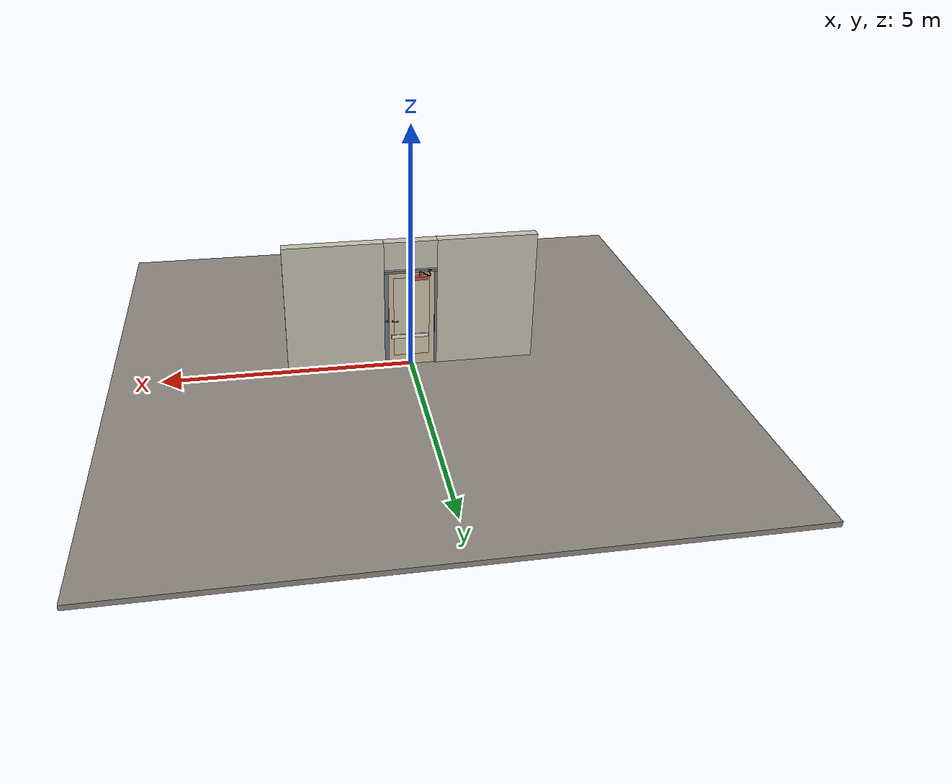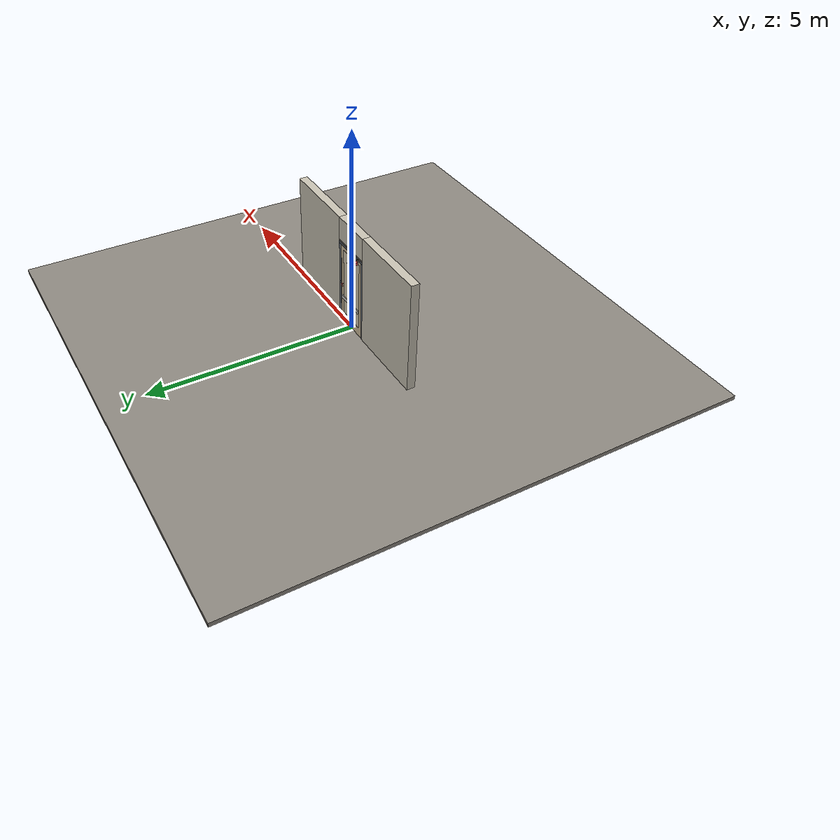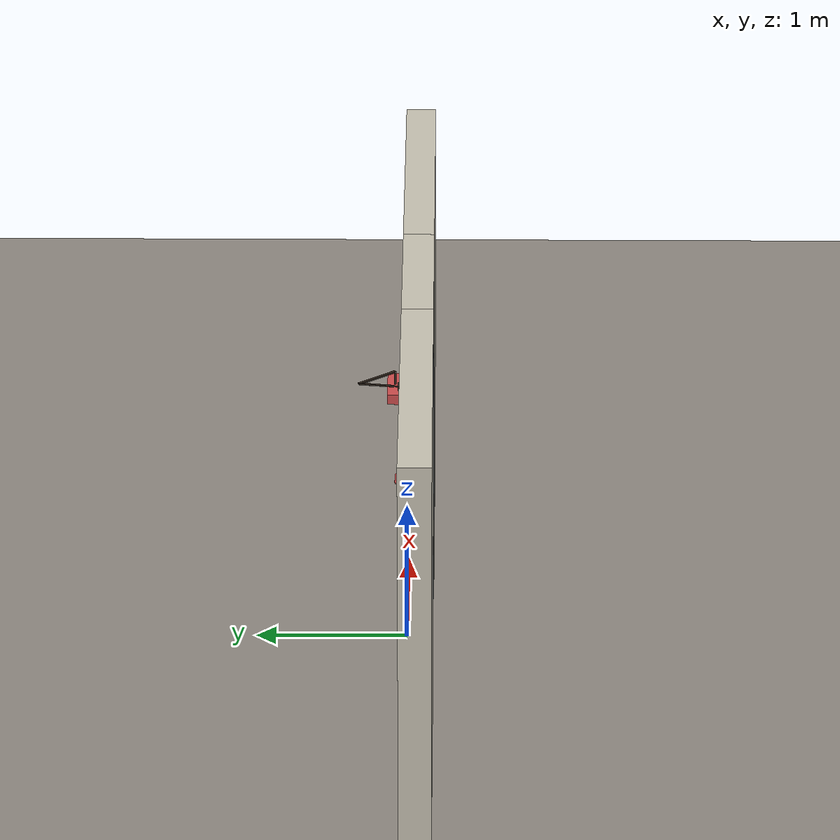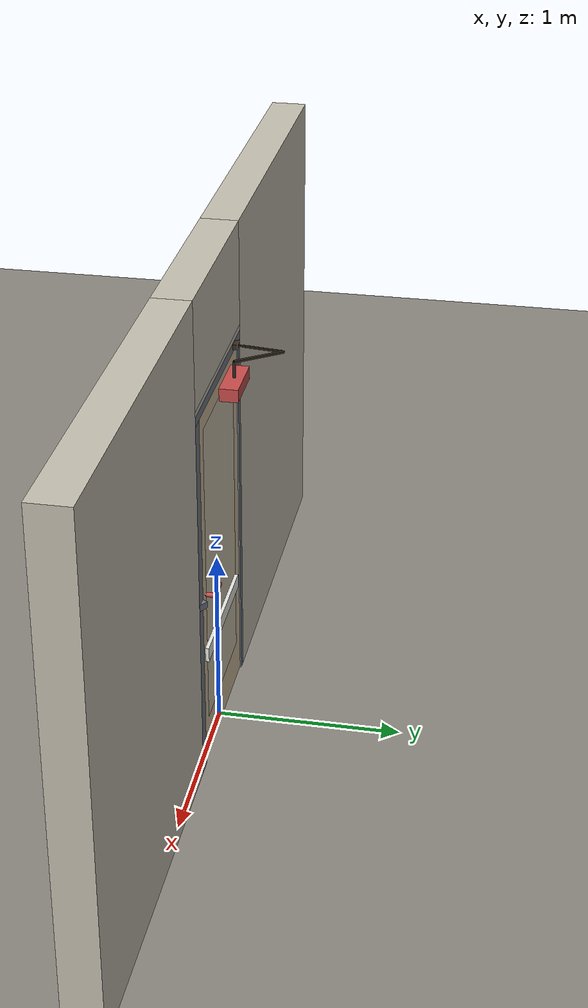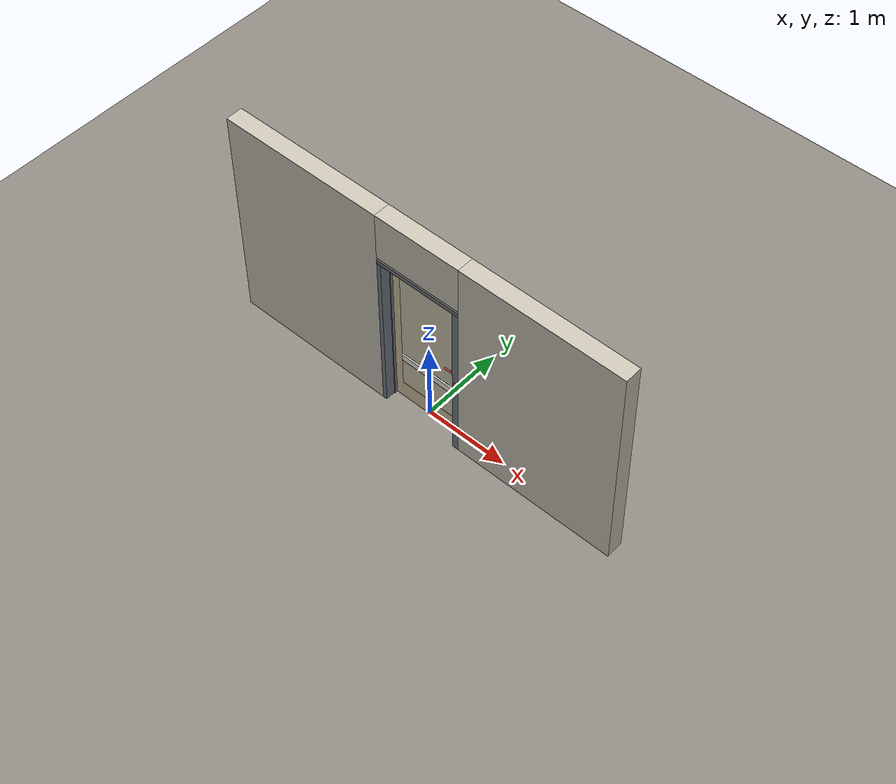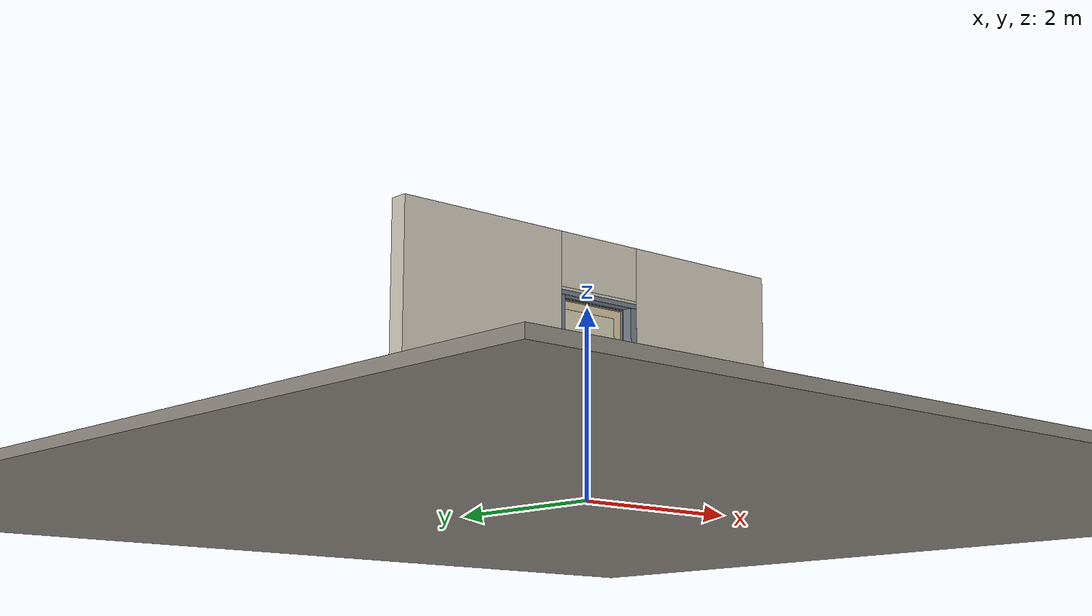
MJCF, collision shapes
<?xml version="1.0" ?>
<mujoco model="db0386_swing_single_full">
  <compiler angle="radian" meshdir="../../hardware" texturedir="../../textures" autolimits="true" inertiafromgeom="false"/>
  <option timestep="0.002" integrator="implicitfast" cone="elliptic" impratio="10" noslip_iterations="3">
    <flag multiccd="enable"/>
  </option>
  <size memory="16M"/>
  <default>
    <geom condim="4" solref="0.005 1" solimp="0.95 0.99 0.001"/>
    <joint solreflimit="0.005 1" solimplimit="0.95 0.99 0.001"/>
    <tendon solreflimit="0.005 1"/>
    <equality solref="0.002 1"/>
  </default>
  <visual>
    <headlight ambient="0.4 0.4 0.4" diffuse="0.7 0.7 0.7" specular="0.2 0.2 0.2"/>
    <quality shadowsize="4096"/>
    <map znear="0.01" zfar="60"/>
  </visual>
  <asset>
    <mesh name="closer_body_fdc4667657" file="closer_body_fdc4667657.obj"/>
    <mesh name="hinge_e22b26c0c1" file="hinge_e22b26c0c1.obj"/>
    <mesh name="hinge_jamb_e1d088f8dc" file="hinge_jamb_e1d088f8dc.obj"/>
    <mesh name="lever_6268dcb28c" file="lever_6268dcb28c.obj"/>
    <material name="mat_floor" rgba="0.55 0.53 0.5 1" specular="0.2" shininess="0.15" reflectance="0"/>
    <material name="mat_wall" rgba="0.78 0.76 0.7 1" specular="0.2" shininess="0.1" reflectance="0"/>
    <material name="mat_leaf" rgba="0.82 0.75 0.62 1" specular="0.2" shininess="0.5" reflectance="0"/>
    <material name="mat_glass" rgba="0.85 0.92 0.95 0.25" specular="0.2" shininess="0.95" reflectance="0.1"/>
    <material name="mat_hinge" rgba="0.65 0.66 0.68 1" specular="0.74" shininess="0.5" reflectance="0.36"/>
    <material name="mat_op_stainless" rgba="0.75 0.76 0.77 1" specular="0.8" shininess="0.65" reflectance="0.4"/>
    <material name="mat_trim" rgba="0.85 0.66 0.3 1" specular="0.8" shininess="0.75" reflectance="0.4"/>
    <material name="mat_bolt" rgba="0.75 0.76 0.77 1" specular="0.8" shininess="0.65" reflectance="0.4"/>
    <material name="mat_frame" rgba="0.45 0.48 0.52 1" specular="0.32" shininess="0.6" reflectance="0.08"/>
    <material name="mat_seal" rgba="0.1 0.1 0.1 1" specular="0.2" shininess="0.1" reflectance="0"/>
    <material name="mat_closer" rgba="0.22 0.17 0.13 1" specular="0.8" shininess="0.6" reflectance="0.4"/>
    <material name="mat_bumper" rgba="0.92 0.92 0.9 1" specular="0.2" shininess="0.6" reflectance="0"/>
    <texture name="skybox" type="skybox" builtin="gradient" rgb1="0.6 0.7 0.85" rgb2="0.9 0.92 0.95" width="256" height="256"/>
  </asset>
  <worldbody>
    <light name="sun" pos="1.5 -2.5 4" dir="-0.3 0.5 -0.8" directional="true" diffuse="0.8 0.8 0.8" specular="0.3 0.3 0.3" castshadow="true"/>
    <light name="fill" pos="-1.5 2.5 3" dir="0.3 -0.5 -0.7" directional="true" diffuse="0.35 0.35 0.4" castshadow="false"/>
    <camera name="robot_view" pos="0 -2.613187 1.734312" xyaxes="1 0 0 0 0.26963 0.962964" fovy="52"/>
    <camera name="far_view" pos="0 2.471187 1.734312" xyaxes="-1 0 0 0 -0.26963 0.962964" fovy="52"/>
    <camera name="iso" pos="1.932062 -2.206438 2.141063" xyaxes="0.741536 0.670913 0 -0.242917 0.268487 0.932151" fovy="46"/>
    <camera name="detail_handle" pos="0.4705 -0.877 1.296" xyaxes="0.97561 0.219512 0 -0.070934 0.315262 0.94635" fovy="38"/>
    <geom name="floor" type="box" size="6 6 0.05" pos="0 0 -0.05" material="mat_floor" group="0" contype="1" conaffinity="1" friction="0.8 0.005 0.0001" density="2400"/>
    <geom name="wall_left" type="box" size="0.99475 0.1 1.35" pos="-1.50525 -0.071 1.35" material="mat_wall" group="0" contype="1" conaffinity="1" friction="0.6 0.005 0.0001" density="800"/>
    <geom name="wall_right" type="box" size="0.97975 0.1 1.35" pos="1.52025 -0.071 1.35" material="mat_wall" group="0" contype="1" conaffinity="1" friction="0.6 0.005 0.0001" density="800"/>
    <geom name="wall_header" type="box" size="0.5255 0.1 0.2875" pos="0.015 -0.071 2.4125" material="mat_wall" group="0" contype="1" conaffinity="1" friction="0.6 0.005 0.0001" density="800"/>
    <geom name="hinge_0_jamb" type="mesh" mesh="hinge_jamb_e1d088f8dc" pos="-0.4575 0.029 0.259" quat="0 1 0 0" material="mat_hinge" group="1" contype="0" conaffinity="0" density="7850"/>
    <geom name="hinge_1_jamb" type="mesh" mesh="hinge_jamb_e1d088f8dc" pos="-0.4575 0.029 1.025" quat="0 1 0 0" material="mat_hinge" group="1" contype="0" conaffinity="0" density="7850"/>
    <geom name="hinge_2_jamb" type="mesh" mesh="hinge_jamb_e1d088f8dc" pos="-0.4575 0.029 1.861" quat="0 1 0 0" material="mat_hinge" group="1" contype="0" conaffinity="0" density="7850"/>
    <geom name="jamb_hinge" type="box" size="0.025 0.1 1.0225" pos="-0.4855 -0.071 1.0225" material="mat_frame" group="0" contype="1" conaffinity="1" friction="0.6 0.005 0.0001" density="300"/>
    <geom name="strike_1016_wall_n" type="box" size="0.04 0.08075 0.018" pos="0.5005 -0.09025 1.016" material="mat_frame" group="0" contype="1" conaffinity="1" friction="0.6 0.005 0.0001" density="300"/>
    <geom name="strike_1016_wall_p" type="box" size="0.04 0.008 0.018" pos="0.5005 0.0175 1.016" material="mat_frame" group="0" contype="1" conaffinity="1" friction="0.6 0.005 0.0001" density="300"/>
    <geom name="strike_1016_ramp" type="box" size="0.04 0.018028 0.018" pos="0.503782 0.018312 1.016" quat="0.957092 0 0 -0.289784" material="mat_frame" group="0" contype="1" conaffinity="1" friction="0.12 0.005 0.0001" density="300"/>
    <geom name="strike_1016_back" type="box" size="0.0285 0.0095 0.018" pos="0.512 0 1.016" material="mat_frame" group="0" contype="1" conaffinity="1" friction="0.6 0.005 0.0001" density="300"/>
    <geom name="jamb_strike_0" type="box" size="0.04 0.1 0.499" pos="0.5005 -0.071 0.499" material="mat_frame" group="0" contype="1" conaffinity="1" friction="0.6 0.005 0.0001" density="300"/>
    <geom name="jamb_strike_1" type="box" size="0.04 0.1 0.5055" pos="0.5005 -0.071 1.5395" material="mat_frame" group="0" contype="1" conaffinity="1" friction="0.6 0.005 0.0001" density="300"/>
    <geom name="jamb_head" type="box" size="0.5255 0.1 0.025" pos="0.015 -0.071 2.07" material="mat_frame" group="0" contype="1" conaffinity="1" friction="0.6 0.005 0.0001" density="300"/>
    <geom name="head_stud" type="box" size="0.5255 0.1 0.015" pos="0.015 -0.071 2.11" material="mat_wall" group="0" contype="1" conaffinity="1" friction="0.6 0.005 0.0001" density="500"/>
    <geom name="stop_hinge" type="box" size="0.0055 0.016 1.0225" pos="-0.455 -0.0385 1.0225" material="mat_frame" group="0" contype="1" conaffinity="1" friction="0.6 0.005 0.0001" density="300"/>
    <geom name="stop_strike" type="box" size="0.0055 0.016 1.0225" pos="0.455 -0.0385 1.0225" material="mat_frame" group="0" contype="1" conaffinity="1" friction="0.6 0.005 0.0001" density="300"/>
    <geom name="stop_head" type="box" size="0.4605 0.016 0.0055" pos="0 -0.0385 2.0395" material="mat_frame" group="0" contype="1" conaffinity="1" friction="0.6 0.005 0.0001" density="300"/>
    <geom name="seal_hinge" type="box" size="0.004 0.002 1.0225" pos="-0.4575 -0.024 1.0225" material="mat_seal" group="1" contype="0" conaffinity="0" density="1100"/>
    <geom name="seal_strike" type="box" size="0.004 0.002 1.0225" pos="0.4575 -0.024 1.0225" material="mat_seal" group="1" contype="0" conaffinity="0" density="1100"/>
    <geom name="seal_head" type="box" size="0.4405 0.002 0.008" pos="0 -0.024 2.033" material="mat_seal" group="1" contype="0" conaffinity="0" density="1100"/>
    <geom name="closer_bracket" type="box" size="0.03 0.012 0.014" pos="-0.3605 0.041 2.075" material="mat_closer" group="1" contype="0" conaffinity="0" density="2700"/>
    <site name="approach_point" pos="0 -1.5 0" quat="1 0 0 0" size="0.05" rgba="0.2 0.9 0.2 0.5" group="4"/>
    <site name="goal_point" pos="0 1.5 0" quat="1 0 0 0" size="0.05" rgba="0.2 0.9 0.2 0.5" group="4"/>
    <site name="door_plane_center" pos="0 0 1.0225" quat="1 0 0 0" size="0.02" rgba="0.2 0.9 0.2 0.5" group="4"/>
    <body name="leaf" pos="-0.4605 0 0">
      <inertial pos="0.39007 0.029096 1.36742" mass="43.537443" quat="-0.458585 0.490611 0.527371 0.520462" diaginertia="2.108479917 18.432287459 20.451474801"/>
      <joint name="leaf_hinge" type="hinge" axis="0 0 1" pos="0.003 0.029 0" limited="true" range="0 1.570796" solreflimit="0.02 1" damping="12.25611" frictionloss="0.599015" stiffness="10.536057" springref="-2.220945" armature="0.02"/>
      <geom name="leaf_slab" type="box" size="0.457 0.022 1.016" pos="0.46 0 1.025" material="mat_leaf" group="0" contype="1" conaffinity="1" friction="0.4 0.005 0.0001" density="1"/>
      <geom name="leaf_glass_0" type="box" size="0.35646 0.0228 0.85344" pos="0.46 0 1.08596" material="mat_glass" group="1" contype="0" conaffinity="0" density="1"/>
      <geom name="hinge_0" type="mesh" mesh="hinge_e22b26c0c1" pos="0.003 0.029 0.259" quat="0 1 0 0" material="mat_hinge" group="1" contype="0" conaffinity="0" density="7850"/>
      <geom name="hinge_1" type="mesh" mesh="hinge_e22b26c0c1" pos="0.003 0.029 1.025" quat="0 1 0 0" material="mat_hinge" group="1" contype="0" conaffinity="0" density="7850"/>
      <geom name="hinge_2" type="mesh" mesh="hinge_e22b26c0c1" pos="0.003 0.029 1.861" quat="0 1 0 0" material="mat_hinge" group="1" contype="0" conaffinity="0" density="7850"/>
      <geom name="leaf_latch_bolt_faceplate" type="box" size="0.0006 0.014 0.028" pos="0.9164 0 1.016" material="mat_bolt" group="1" contype="0" conaffinity="0" density="8500"/>
      <geom name="closer_body" type="mesh" mesh="closer_body_fdc4667657" pos="0.3 0.022 1.952" quat="-0.707107 0.707107 0 0" material="mat_closer" group="1" contype="0" conaffinity="0" density="2000"/>
      <geom name="closer_body_col" type="box" size="0.145 0.05 0.035" pos="0.3 0.072 1.952" material="mat_closer" group="3" contype="1" conaffinity="1" rgba="0.8 0.3 0.3 0.25" friction="0.6 0.005 0.0001" density="2000"/>
      <geom name="closer_pinion_shaft" type="cylinder" size="0.008 0.0615" pos="0.3 0.072 2.0135" material="mat_closer" group="1" contype="0" conaffinity="0" density="2700"/>
      <geom name="bumper_rail_n" type="box" size="0.372 0.01 0.04" pos="0.495 -0.032 0.659" material="mat_bumper" group="0" contype="1" conaffinity="1" friction="0.6 0.005 0.0001" density="1200"/>
      <geom name="bumper_rail_p" type="box" size="0.372 0.01 0.04" pos="0.495 0.032 0.659" material="mat_bumper" group="0" contype="1" conaffinity="1" friction="0.6 0.005 0.0001" density="1200"/>
      <site name="leaf_edge_mid" pos="0.917 0 1.016" quat="1 0 0 0" size="0.02" rgba="0.2 0.9 0.2 0.5" group="4"/>
      <body name="leaf_handle" pos="0.847 0 1.016">
        <inertial pos="-0.035149 0 0" mass="1.038236" quat="0 0.707107 0.707107 0" diaginertia="0.002348364 0.00382535 0.005606687"/>
        <joint name="leaf_handle_hinge" type="hinge" axis="0 -1 0" limited="true" range="0 0.96" damping="0.255791" frictionloss="0.05" stiffness="1.2" springref="-0.583333" armature="0.01"/>
        <geom name="leaf_handle_spindle" type="cylinder" size="0.006 0.03" pos="0 0 0" quat="0.707107 -0.707107 0 0" material="mat_op_stainless" group="1" contype="0" conaffinity="0" density="7850"/>
        <geom name="leaf_handle_lever_n" type="mesh" mesh="lever_6268dcb28c" pos="0 -0.022 0" quat="0.707107 0.707107 0 0" material="mat_op_stainless" group="1" contype="0" conaffinity="0" density="3000"/>
        <geom name="leaf_handle_lever_col_n" type="capsule" size="0.0095 0.0505" pos="-0.06 -0.077 0" quat="0.707107 0 -0.707107 0" material="mat_op_stainless" group="3" contype="1" conaffinity="1" rgba="0.8 0.3 0.3 0.25" friction="0.7 0.01 0.0001" density="3000"/>
        <geom name="leaf_handle_hub_col_n" type="cylinder" size="0.012 0.022" pos="0 -0.052 0" quat="0.707107 -0.707107 0 0" material="mat_op_stainless" group="3" contype="1" conaffinity="1" rgba="0.8 0.3 0.3 0.25" friction="0.6 0.005 0.0001" density="3000"/>
        <geom name="leaf_handle_lever_p" type="mesh" mesh="lever_6268dcb28c" pos="0 0.022 0" quat="-0.707107 0.707107 0 0" material="mat_op_stainless" group="1" contype="0" conaffinity="0" density="3000"/>
        <geom name="leaf_handle_lever_col_p" type="capsule" size="0.0095 0.0505" pos="-0.06 0.077 0" quat="0.707107 0 -0.707107 0" material="mat_op_stainless" group="3" contype="1" conaffinity="1" rgba="0.8 0.3 0.3 0.25" friction="0.7 0.01 0.0001" density="3000"/>
        <geom name="leaf_handle_hub_col_p" type="cylinder" size="0.012 0.022" pos="0 0.052 0" quat="0.707107 -0.707107 0 0" material="mat_op_stainless" group="3" contype="1" conaffinity="1" rgba="0.8 0.3 0.3 0.25" friction="0.6 0.005 0.0001" density="3000"/>
        <site name="leaf_handle_grip_n" pos="-0.096 -0.077 0" quat="1 0 0 0" size="0.012" rgba="0.2 0.9 0.2 0.5" group="4"/>
        <site name="leaf_handle_grip_p" pos="-0.096 0.077 0" quat="1 0 0 0" size="0.012" rgba="0.2 0.9 0.2 0.5" group="4"/>
      </body>
      <body name="leaf_latch_bolt" pos="0.917 0 1.016">
        <inertial pos="-0.0055 0 0" mass="0.074627" quat="0.92388 -0.382683 0 0" diaginertia="0.000002271 0.000013255 0.000013255"/>
        <joint name="leaf_latch_bolt_slide" type="slide" axis="-1 0 0" limited="true" range="0 0.019" damping="2" frictionloss="0.3" stiffness="550" springref="-0.01" armature="0.1"/>
        <geom name="leaf_latch_bolt_capsule" type="capsule" size="0.008 0.0165" pos="-0.0055 0 0" quat="0.707107 0 0.707107 0" material="mat_bolt" group="0" contype="1" conaffinity="1" friction="0.2 0.005 0.0001" density="8500"/>
      </body>
      <body name="closer_arm_main" pos="0.3 0.072 2.075" quat="0.454107 0 0 0.890947">
        <inertial pos="0.14 0 0" mass="0.12096" quat="1 0 0 0" diaginertia="0.000003588 0.00079128 0.000792852"/>
        <joint name="closer_pinion" type="hinge" axis="0 0 1" limited="false" damping="0.01" armature="0.002"/>
        <geom name="closer_arm_main_geom" type="box" size="0.14 0.008 0.005" pos="0.14 0 0" material="mat_closer" group="1" contype="0" conaffinity="0" density="2700"/>
        <body name="closer_arm_fore" pos="0.28 0 0" quat="-0.373215 0 0 -0.927745">
          <inertial pos="0.128088 0 0" mass="0.076531" quat="1 0 0 0" diaginertia="0.000001771 0.000437665 0.000438201"/>
          <joint name="closer_elbow" type="hinge" axis="0 0 1" limited="false" damping="0.01" armature="0.002"/>
          <geom name="closer_arm_fore_geom" type="box" size="0.1125 0.007 0.004" pos="0.1125 0 0" material="mat_closer" group="1" contype="0" conaffinity="0" density="2700"/>
          <geom name="closer_fore_neck" type="box" size="0.0175 0.003 0.003" pos="0.2425 0 0" material="mat_closer" group="1" contype="0" conaffinity="0" density="2700"/>
          <geom name="closer_fore_pivot" type="cylinder" size="0.005 0.012" pos="0.26 0 0" material="mat_closer" group="1" contype="0" conaffinity="0" density="2700"/>
        </body>
      </body>
    </body>
  </worldbody>
  <tendon>
    <fixed name="leaf_latch_bolt_coupling" limited="true" range="0 10">
      <joint joint="leaf_latch_bolt_slide" coef="1"/>
      <joint joint="leaf_handle_hinge" coef="-0.020879"/>
    </fixed>
  </tendon>
  <equality>
    <connect name="closer_arm_connect" body1="closer_arm_fore" body2="world" anchor="0.26 0 0" active="true"/>
  </equality>
  <contact>
    <exclude body1="closer_arm_main" body2="leaf"/>
    <exclude body1="closer_arm_fore" body2="leaf"/>
    <exclude body1="closer_arm_main" body2="closer_arm_fore"/>
  </contact>
  <sensor>
    <jointpos name="leaf_hinge_pos" joint="leaf_hinge"/>
    <jointvel name="leaf_hinge_vel" joint="leaf_hinge"/>
    <jointpos name="leaf_handle_hinge_pos" joint="leaf_handle_hinge"/>
    <jointvel name="leaf_handle_hinge_vel" joint="leaf_handle_hinge"/>
    <jointpos name="leaf_latch_bolt_slide_pos" joint="leaf_latch_bolt_slide"/>
    <jointvel name="leaf_latch_bolt_slide_vel" joint="leaf_latch_bolt_slide"/>
  </sensor>
</mujoco>
